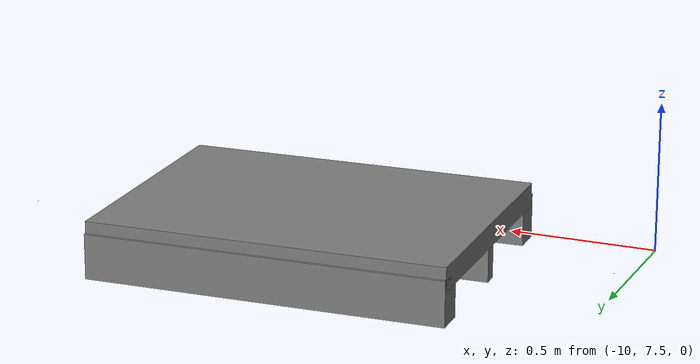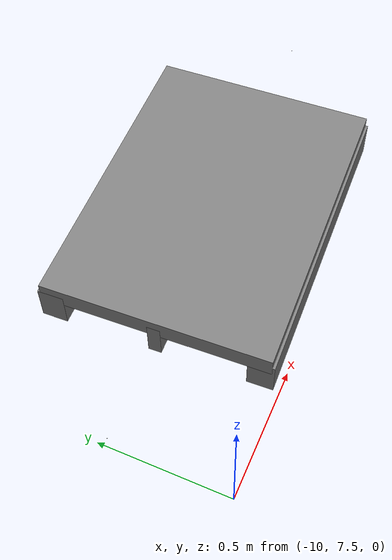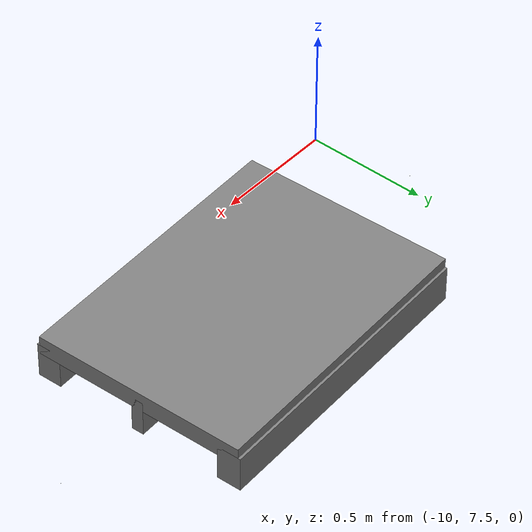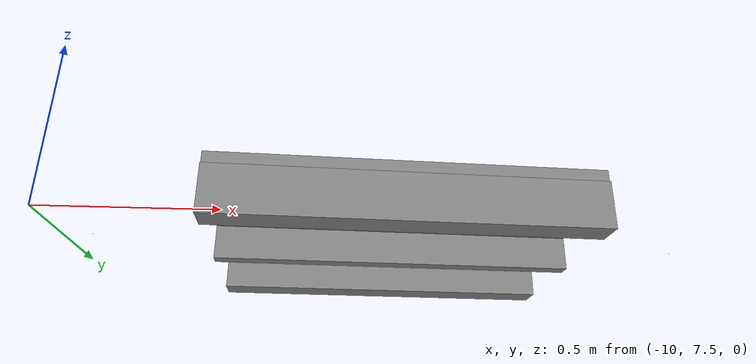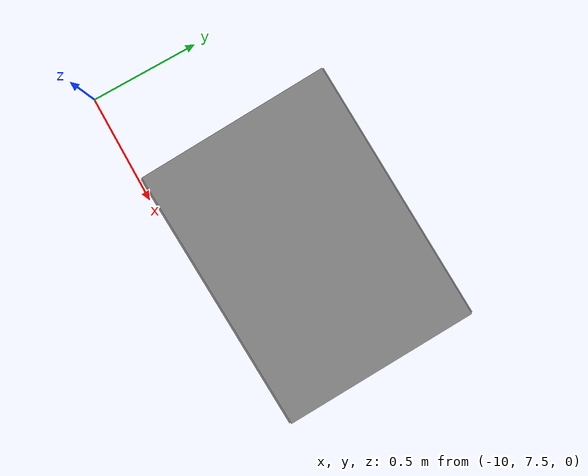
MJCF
<mujoco model="palet">

	<default>
		<default class="palet">
			<default class="palet_side_geom">
				<geom type="box" friction="2 0.005 0.0001" contype="1" conaffinity="0" size="0.60 0.050 0.075" mass="0.1" />
			</default>
			<default class="palet_middle_geom">
				<geom type="box" friction="2 0.005 0.0001" contype="1" conaffinity="0" size="0.60 0.025 0.075" mass="0.1" />
			</default>
			<default class="palet_top_geom">
				<geom type="box" friction="2 0.005 0.0001" contype="1" conaffinity="0" size="0.60 0.440 0.040" mass="0.1" />
			</default>
		</default>
	</default>

	<worldbody>
		<body name="palet_body" pos="-9.0 8.0 0.075" euler="0 0 2.5132741228718345">
			<site name="palet_link" pos="0 0 0" size="0.001 0.001 0.001" />
			<site name="goal_point1" pos="1 0 0" size="0.001 0.001 0.001" />
			<site name="goal_point2" pos="-1 0 0" size="0.001 0.001 0.001" />
			<joint type="free" />
			<geom pos="0 0.400 0" class="palet_side_geom" contype="1" conaffinity="1" />
			<geom pos="0 0 0" class="palet_middle_geom" contype="1" conaffinity="1" />
			<geom pos="0 -0.400 0" class="palet_side_geom" contype="1" conaffinity="1" />
			<geom pos="0 0 0.075" class="palet_top_geom" contype="1" conaffinity="1" />
		</body>
	</worldbody>

</mujoco>
